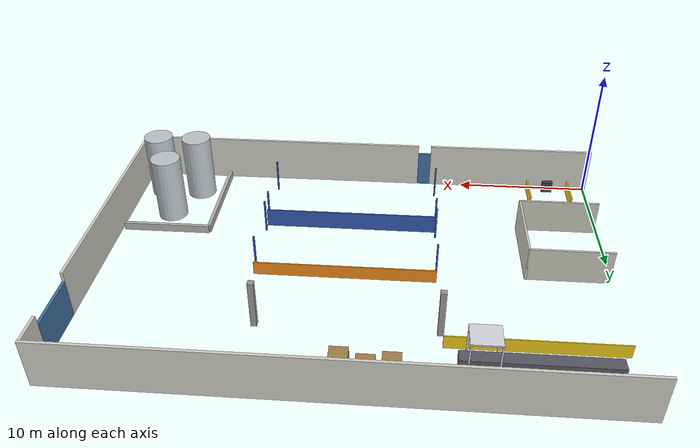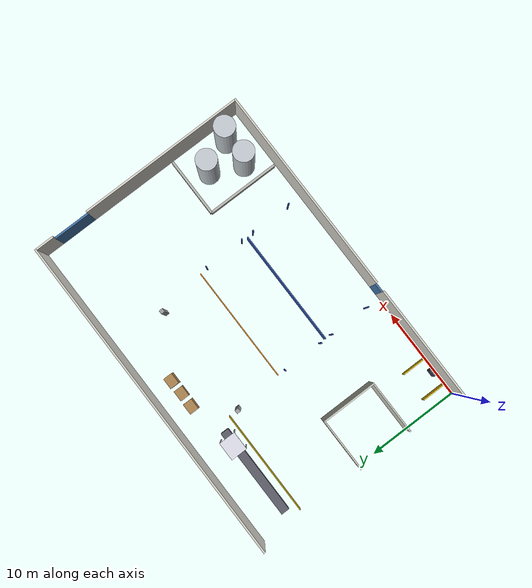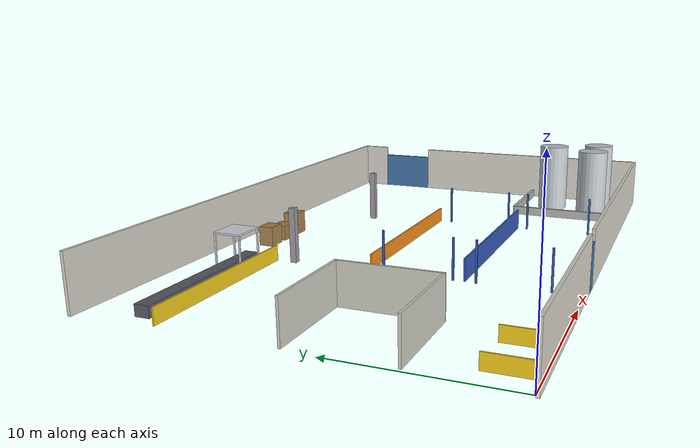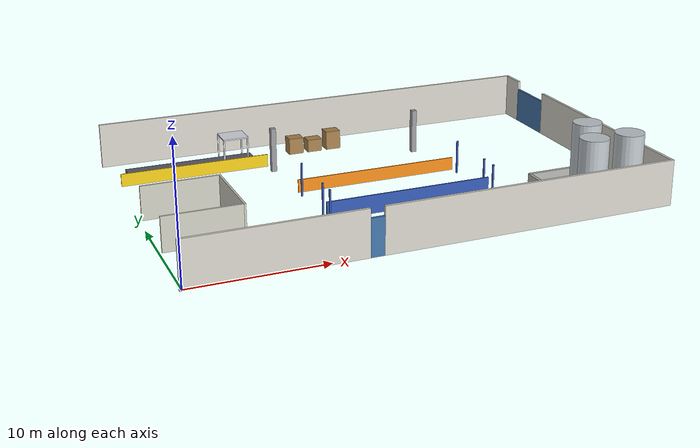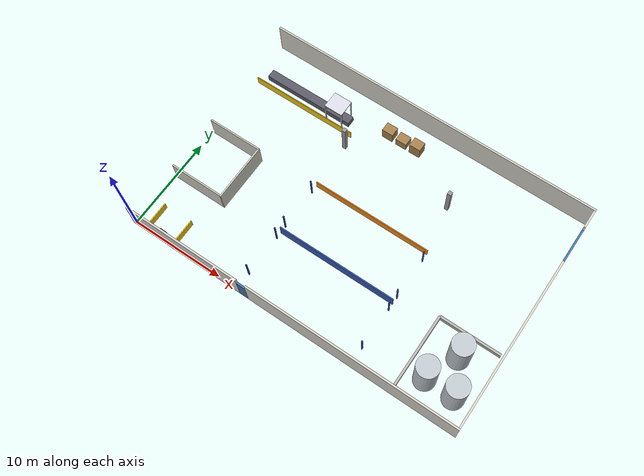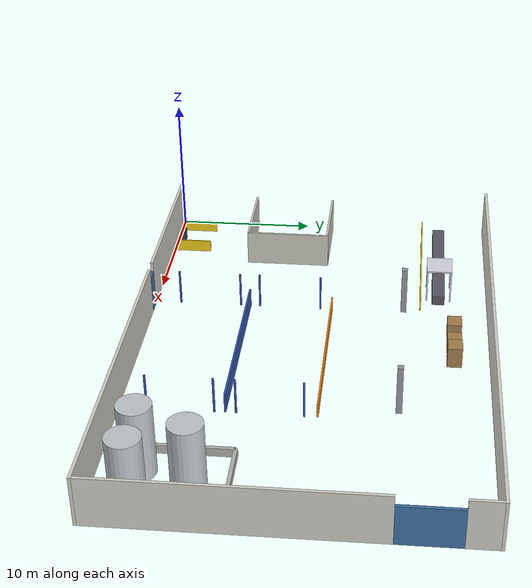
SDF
<sdf version="1.9">
 <world name="uco_warehouse">
  <model name="wall_south_0">
   <static>true</static>
   <pose>6.200 -0.100 1.750 0 0 0.0000</pose>
   <link name="link">
    <collision name="c"><geometry><box><size>12.800 0.200 3.500</size></box></geometry></collision>
    <visual name="v">
     <geometry><box><size>12.800 0.200 3.500</size></box></geometry>
     <material><ambient>0.83 0.82 0.78 1</ambient><diffuse>0.83 0.82 0.78 1</diffuse></material>
    </visual>
   </link>
  </model>
  <model name="wall_south_1">
   <static>true</static>
   <pose>24.900 -0.100 1.750 0 0 0.0000</pose>
   <link name="link">
    <collision name="c"><geometry><box><size>22.600 0.200 3.500</size></box></geometry></collision>
    <visual name="v">
     <geometry><box><size>22.600 0.200 3.500</size></box></geometry>
     <material><ambient>0.83 0.82 0.78 1</ambient><diffuse>0.83 0.82 0.78 1</diffuse></material>
    </visual>
   </link>
  </model>
  <model name="wall_north_0">
   <static>true</static>
   <pose>18.000 24.100 1.750 0 0 0.0000</pose>
   <link name="link">
    <collision name="c"><geometry><box><size>36.400 0.200 3.500</size></box></geometry></collision>
    <visual name="v">
     <geometry><box><size>36.400 0.200 3.500</size></box></geometry>
     <material><ambient>0.83 0.82 0.78 1</ambient><diffuse>0.83 0.82 0.78 1</diffuse></material>
    </visual>
   </link>
  </model>
  <model name="wall_east_0">
   <static>true</static>
   <pose>36.100 9.000 1.750 0 0 0.0000</pose>
   <link name="link">
    <collision name="c"><geometry><box><size>0.200 18.000 3.500</size></box></geometry></collision>
    <visual name="v">
     <geometry><box><size>0.200 18.000 3.500</size></box></geometry>
     <material><ambient>0.83 0.82 0.78 1</ambient><diffuse>0.83 0.82 0.78 1</diffuse></material>
    </visual>
   </link>
  </model>
  <model name="wall_east_1">
   <static>true</static>
   <pose>36.100 23.000 1.750 0 0 0.0000</pose>
   <link name="link">
    <collision name="c"><geometry><box><size>0.200 2.000 3.500</size></box></geometry></collision>
    <visual name="v">
     <geometry><box><size>0.200 2.000 3.500</size></box></geometry>
     <material><ambient>0.83 0.82 0.78 1</ambient><diffuse>0.83 0.82 0.78 1</diffuse></material>
    </visual>
   </link>
  </model>
  <model name="personnel_door">
   <static>true</static>
   <pose>13.100 -0.100 1.400 0 0 0.0000</pose>
   <link name="link">
    <collision name="c"><geometry><box><size>1.000 0.200 2.800</size></box></geometry></collision>
    <visual name="v">
     <geometry><box><size>1.000 0.200 2.800</size></box></geometry>
     <material><ambient>0.25 0.45 0.65 1</ambient><diffuse>0.25 0.45 0.65 1</diffuse></material>
    </visual>
   </link>
  </model>
  <model name="dispatch_door">
   <static>true</static>
   <pose>36.100 20.000 1.400 0 0 0.0000</pose>
   <link name="link">
    <collision name="c"><geometry><box><size>0.200 4.000 2.800</size></box></geometry></collision>
    <visual name="v">
     <geometry><box><size>0.200 4.000 2.800</size></box></geometry>
     <material><ambient>0.25 0.45 0.65 1</ambient><diffuse>0.25 0.45 0.65 1</diffuse></material>
    </visual>
   </link>
  </model>
  <model name="conveyor">
   <static>true</static>
   <pose>6.000 20.500 0.350 0 0 0.0000</pose>
   <link name="link">
    <collision name="c"><geometry><box><size>10.000 0.900 0.700</size></box></geometry></collision>
    <visual name="v">
     <geometry><box><size>10.000 0.900 0.700</size></box></geometry>
     <material><ambient>0.350 0.350 0.400 1</ambient><diffuse>0.350 0.350 0.400 1</diffuse></material>
    </visual>
   </link>
  </model>
  <model name="inspection_booth_roof">
   <static>true</static>
   <pose>9.500 20.500 2.450 0 0 0.0000</pose>
   <link name="link">
    <visual name="v">
     <geometry><box><size>2.000 1.800 0.100</size></box></geometry>
     <material><ambient>0.850 0.850 0.900 1</ambient><diffuse>0.850 0.850 0.900 1</diffuse></material>
    </visual>
   </link>
  </model>
  <model name="inspection_post_1">
   <static>true</static>
   <pose>8.550 19.650 1.200 0 0 0.0000</pose>
   <link name="link">
    <collision name="c"><geometry><box><size>0.100 0.100 2.400</size></box></geometry></collision>
    <visual name="v">
     <geometry><box><size>0.100 0.100 2.400</size></box></geometry>
     <material><ambient>0.850 0.850 0.900 1</ambient><diffuse>0.850 0.850 0.900 1</diffuse></material>
    </visual>
   </link>
  </model>
  <model name="inspection_post_2">
   <static>true</static>
   <pose>10.450 19.650 1.200 0 0 0.0000</pose>
   <link name="link">
    <collision name="c"><geometry><box><size>0.100 0.100 2.400</size></box></geometry></collision>
    <visual name="v">
     <geometry><box><size>0.100 0.100 2.400</size></box></geometry>
     <material><ambient>0.850 0.850 0.900 1</ambient><diffuse>0.850 0.850 0.900 1</diffuse></material>
    </visual>
   </link>
  </model>
  <model name="inspection_post_3">
   <static>true</static>
   <pose>8.550 21.350 1.200 0 0 0.0000</pose>
   <link name="link">
    <collision name="c"><geometry><box><size>0.100 0.100 2.400</size></box></geometry></collision>
    <visual name="v">
     <geometry><box><size>0.100 0.100 2.400</size></box></geometry>
     <material><ambient>0.850 0.850 0.900 1</ambient><diffuse>0.850 0.850 0.900 1</diffuse></material>
    </visual>
   </link>
  </model>
  <model name="inspection_post_4">
   <static>true</static>
   <pose>10.450 21.350 1.200 0 0 0.0000</pose>
   <link name="link">
    <collision name="c"><geometry><box><size>0.100 0.100 2.400</size></box></geometry></collision>
    <visual name="v">
     <geometry><box><size>0.100 0.100 2.400</size></box></geometry>
     <material><ambient>0.850 0.850 0.900 1</ambient><diffuse>0.850 0.850 0.900 1</diffuse></material>
    </visual>
   </link>
  </model>
  <model name="receiving_barrier">
   <static>true</static>
   <pose>6.100 19.200 0.500 0 0 0.0000</pose>
   <link name="link">
    <collision name="c"><geometry><box><size>11.600 0.080 1.000</size></box></geometry></collision>
    <visual name="v">
     <geometry><box><size>11.600 0.080 1.000</size></box></geometry>
     <material><ambient>0.950 0.800 0.100 1</ambient><diffuse>0.950 0.800 0.100 1</diffuse></material>
    </visual>
   </link>
  </model>
  <model name="office_wall_s">
   <static>true</static>
   <pose>3.100 6.000 1.300 0 0 0.0000</pose>
   <link name="link">
    <collision name="c"><geometry><box><size>5.800 0.150 2.600</size></box></geometry></collision>
    <visual name="v">
     <geometry><box><size>5.800 0.150 2.600</size></box></geometry>
     <material><ambient>0.800 0.800 0.750 1</ambient><diffuse>0.800 0.800 0.750 1</diffuse></material>
    </visual>
   </link>
  </model>
  <model name="office_wall_n">
   <static>true</static>
   <pose>3.100 12.000 1.300 0 0 0.0000</pose>
   <link name="link">
    <collision name="c"><geometry><box><size>5.800 0.150 2.600</size></box></geometry></collision>
    <visual name="v">
     <geometry><box><size>5.800 0.150 2.600</size></box></geometry>
     <material><ambient>0.800 0.800 0.750 1</ambient><diffuse>0.800 0.800 0.750 1</diffuse></material>
    </visual>
   </link>
  </model>
  <model name="office_wall_e">
   <static>true</static>
   <pose>6.000 9.000 1.300 0 0 0.0000</pose>
   <link name="link">
    <collision name="c"><geometry><box><size>0.150 6.150 2.600</size></box></geometry></collision>
    <visual name="v">
     <geometry><box><size>0.150 6.150 2.600</size></box></geometry>
     <material><ambient>0.800 0.800 0.750 1</ambient><diffuse>0.800 0.800 0.750 1</diffuse></material>
    </visual>
   </link>
  </model>
  <model name="rack_guard_rail_north">
   <static>true</static>
   <pose>18.600 12.850 0.500 0 0 0.0000</pose>
   <link name="link">
    <collision name="c"><geometry><box><size>12.800 0.100 1.000</size></box></geometry></collision>
    <visual name="v">
     <geometry><box><size>12.800 0.100 1.000</size></box></geometry>
     <material><ambient>0.950 0.550 0.100 1</ambient><diffuse>0.950 0.550 0.100 1</diffuse></material>
    </visual>
   </link>
  </model>
  <model name="rack_spine">
   <static>true</static>
   <pose>18.600 6.900 0.700 0 0 0.0000</pose>
   <link name="link">
    <collision name="c"><geometry><box><size>12.800 0.120 1.400</size></box></geometry></collision>
    <visual name="v">
     <geometry><box><size>12.800 0.120 1.400</size></box></geometry>
     <material><ambient>0.200 0.350 0.700 1</ambient><diffuse>0.200 0.350 0.700 1</diffuse></material>
    </visual>
   </link>
  </model>
  <model name="rack_post_a1w">
   <static>true</static>
   <pose>12.200 12.000 1.300 0 0 0.0000</pose>
   <link name="link">
    <collision name="c"><geometry><box><size>0.120 0.120 2.600</size></box></geometry></collision>
    <visual name="v">
     <geometry><box><size>0.120 0.120 2.600</size></box></geometry>
     <material><ambient>0.200 0.350 0.700 1</ambient><diffuse>0.200 0.350 0.700 1</diffuse></material>
    </visual>
   </link>
  </model>
  <model name="rack_post_a1e">
   <static>true</static>
   <pose>25.000 12.000 1.300 0 0 0.0000</pose>
   <link name="link">
    <collision name="c"><geometry><box><size>0.120 0.120 2.600</size></box></geometry></collision>
    <visual name="v">
     <geometry><box><size>0.120 0.120 2.600</size></box></geometry>
     <material><ambient>0.200 0.350 0.700 1</ambient><diffuse>0.200 0.350 0.700 1</diffuse></material>
    </visual>
   </link>
  </model>
  <model name="rack_post_a2w">
   <static>true</static>
   <pose>12.200 7.600 1.300 0 0 0.0000</pose>
   <link name="link">
    <collision name="c"><geometry><box><size>0.120 0.120 2.600</size></box></geometry></collision>
    <visual name="v">
     <geometry><box><size>0.120 0.120 2.600</size></box></geometry>
     <material><ambient>0.200 0.350 0.700 1</ambient><diffuse>0.200 0.350 0.700 1</diffuse></material>
    </visual>
   </link>
  </model>
  <model name="rack_post_a2e">
   <static>true</static>
   <pose>25.000 7.600 1.300 0 0 0.0000</pose>
   <link name="link">
    <collision name="c"><geometry><box><size>0.120 0.120 2.600</size></box></geometry></collision>
    <visual name="v">
     <geometry><box><size>0.120 0.120 2.600</size></box></geometry>
     <material><ambient>0.200 0.350 0.700 1</ambient><diffuse>0.200 0.350 0.700 1</diffuse></material>
    </visual>
   </link>
  </model>
  <model name="rack_post_b1w">
   <static>true</static>
   <pose>12.200 6.200 1.300 0 0 0.0000</pose>
   <link name="link">
    <collision name="c"><geometry><box><size>0.120 0.120 2.600</size></box></geometry></collision>
    <visual name="v">
     <geometry><box><size>0.120 0.120 2.600</size></box></geometry>
     <material><ambient>0.200 0.350 0.700 1</ambient><diffuse>0.200 0.350 0.700 1</diffuse></material>
    </visual>
   </link>
  </model>
  <model name="rack_post_b1e">
   <static>true</static>
   <pose>25.000 6.200 1.300 0 0 0.0000</pose>
   <link name="link">
    <collision name="c"><geometry><box><size>0.120 0.120 2.600</size></box></geometry></collision>
    <visual name="v">
     <geometry><box><size>0.120 0.120 2.600</size></box></geometry>
     <material><ambient>0.200 0.350 0.700 1</ambient><diffuse>0.200 0.350 0.700 1</diffuse></material>
    </visual>
   </link>
  </model>
  <model name="rack_post_b2w">
   <static>true</static>
   <pose>12.200 1.800 1.300 0 0 0.0000</pose>
   <link name="link">
    <collision name="c"><geometry><box><size>0.120 0.120 2.600</size></box></geometry></collision>
    <visual name="v">
     <geometry><box><size>0.120 0.120 2.600</size></box></geometry>
     <material><ambient>0.200 0.350 0.700 1</ambient><diffuse>0.200 0.350 0.700 1</diffuse></material>
    </visual>
   </link>
  </model>
  <model name="rack_post_b2e">
   <static>true</static>
   <pose>25.000 1.800 1.300 0 0 0.0000</pose>
   <link name="link">
    <collision name="c"><geometry><box><size>0.120 0.120 2.600</size></box></geometry></collision>
    <visual name="v">
     <geometry><box><size>0.120 0.120 2.600</size></box></geometry>
     <material><ambient>0.200 0.350 0.700 1</ambient><diffuse>0.200 0.350 0.700 1</diffuse></material>
    </visual>
   </link>
  </model>
  <model name="bund_n">
   <static>true</static>
   <pose>32.550 8.200 0.300 0 0 0.0000</pose>
   <link name="link">
    <collision name="c"><geometry><box><size>6.500 0.250 0.600</size></box></geometry></collision>
    <visual name="v">
     <geometry><box><size>6.500 0.250 0.600</size></box></geometry>
     <material><ambient>0.700 0.700 0.680 1</ambient><diffuse>0.700 0.700 0.680 1</diffuse></material>
    </visual>
   </link>
  </model>
  <model name="bund_w">
   <static>true</static>
   <pose>29.300 4.200 0.300 0 0 0.0000</pose>
   <link name="link">
    <collision name="c"><geometry><box><size>0.250 8.000 0.600</size></box></geometry></collision>
    <visual name="v">
     <geometry><box><size>0.250 8.000 0.600</size></box></geometry>
     <material><ambient>0.700 0.700 0.680 1</ambient><diffuse>0.700 0.700 0.680 1</diffuse></material>
    </visual>
   </link>
  </model>
  <model name="tank_1">
   <static>true</static>
   <pose>31.200 2.600 2.500 0 0 0</pose>
   <link name="link">
    <collision name="c">
     <geometry><cylinder><radius>1.100</radius><length>5.000</length></cylinder></geometry>
    </collision>
    <visual name="v">
     <geometry><cylinder><radius>1.100</radius><length>5.000</length></cylinder></geometry>
     <material><ambient>0.750 0.780 0.800 1</ambient><diffuse>0.750 0.780 0.800 1</diffuse></material>
    </visual>
   </link>
  </model>
  <model name="tank_2">
   <static>true</static>
   <pose>34.200 2.600 2.500 0 0 0</pose>
   <link name="link">
    <collision name="c">
     <geometry><cylinder><radius>1.100</radius><length>5.000</length></cylinder></geometry>
    </collision>
    <visual name="v">
     <geometry><cylinder><radius>1.100</radius><length>5.000</length></cylinder></geometry>
     <material><ambient>0.750 0.780 0.800 1</ambient><diffuse>0.750 0.780 0.800 1</diffuse></material>
    </visual>
   </link>
  </model>
  <model name="tank_3">
   <static>true</static>
   <pose>32.700 5.900 2.500 0 0 0</pose>
   <link name="link">
    <collision name="c">
     <geometry><cylinder><radius>1.100</radius><length>5.000</length></cylinder></geometry>
    </collision>
    <visual name="v">
     <geometry><cylinder><radius>1.100</radius><length>5.000</length></cylinder></geometry>
     <material><ambient>0.750 0.780 0.800 1</ambient><diffuse>0.750 0.780 0.800 1</diffuse></material>
    </visual>
   </link>
  </model>
  <model name="charger_unit">
   <static>true</static>
   <pose>3.000 0.400 0.450 0 0 0.0000</pose>
   <link name="link">
    <collision name="c"><geometry><box><size>0.800 0.350 0.900</size></box></geometry></collision>
    <visual name="v">
     <geometry><box><size>0.800 0.350 0.900</size></box></geometry>
     <material><ambient>0.250 0.250 0.300 1</ambient><diffuse>0.250 0.250 0.300 1</diffuse></material>
    </visual>
   </link>
  </model>
  <model name="charger_barrier_w">
   <static>true</static>
   <pose>1.400 1.500 0.450 0 0 0.0000</pose>
   <link name="link">
    <collision name="c"><geometry><box><size>0.100 2.600 0.900</size></box></geometry></collision>
    <visual name="v">
     <geometry><box><size>0.100 2.600 0.900</size></box></geometry>
     <material><ambient>0.950 0.800 0.100 1</ambient><diffuse>0.950 0.800 0.100 1</diffuse></material>
    </visual>
   </link>
  </model>
  <model name="charger_barrier_e">
   <static>true</static>
   <pose>4.600 1.500 0.450 0 0 0.0000</pose>
   <link name="link">
    <collision name="c"><geometry><box><size>0.100 2.600 0.900</size></box></geometry></collision>
    <visual name="v">
     <geometry><box><size>0.100 2.600 0.900</size></box></geometry>
     <material><ambient>0.950 0.800 0.100 1</ambient><diffuse>0.950 0.800 0.100 1</diffuse></material>
    </visual>
   </link>
  </model>
  <model name="pallet_stack_1">
   <static>true</static>
   <pose>15.000 21.600 0.650 0 0 0.0000</pose>
   <link name="link">
    <collision name="c"><geometry><box><size>1.200 1.000 1.300</size></box></geometry></collision>
    <visual name="v">
     <geometry><box><size>1.200 1.000 1.300</size></box></geometry>
     <material><ambient>0.650 0.500 0.300 1</ambient><diffuse>0.650 0.500 0.300 1</diffuse></material>
    </visual>
   </link>
  </model>
  <model name="pallet_stack_2">
   <static>true</static>
   <pose>16.600 21.600 0.500 0 0 0.0000</pose>
   <link name="link">
    <collision name="c"><geometry><box><size>1.200 1.000 1.000</size></box></geometry></collision>
    <visual name="v">
     <geometry><box><size>1.200 1.000 1.000</size></box></geometry>
     <material><ambient>0.650 0.500 0.300 1</ambient><diffuse>0.650 0.500 0.300 1</diffuse></material>
    </visual>
   </link>
  </model>
  <model name="pallet_stack_3">
   <static>true</static>
   <pose>18.200 21.600 0.750 0 0 0.0000</pose>
   <link name="link">
    <collision name="c"><geometry><box><size>1.200 1.000 1.500</size></box></geometry></collision>
    <visual name="v">
     <geometry><box><size>1.200 1.000 1.500</size></box></geometry>
     <material><ambient>0.650 0.500 0.300 1</ambient><diffuse>0.650 0.500 0.300 1</diffuse></material>
    </visual>
   </link>
  </model>
  <model name="column_1">
   <static>true</static>
   <pose>12.000 18.000 1.750 0 0 0.0000</pose>
   <link name="link">
    <collision name="c"><geometry><box><size>0.400 0.400 3.500</size></box></geometry></collision>
    <visual name="v">
     <geometry><box><size>0.400 0.400 3.500</size></box></geometry>
     <material><ambient>0.600 0.600 0.620 1</ambient><diffuse>0.600 0.600 0.620 1</diffuse></material>
    </visual>
   </link>
  </model>
  <model name="column_2">
   <static>true</static>
   <pose>24.000 18.000 1.750 0 0 0.0000</pose>
   <link name="link">
    <collision name="c"><geometry><box><size>0.400 0.400 3.500</size></box></geometry></collision>
    <visual name="v">
     <geometry><box><size>0.400 0.400 3.500</size></box></geometry>
     <material><ambient>0.600 0.600 0.620 1</ambient><diffuse>0.600 0.600 0.620 1</diffuse></material>
    </visual>
   </link>
  </model>
 </world>
</sdf>
